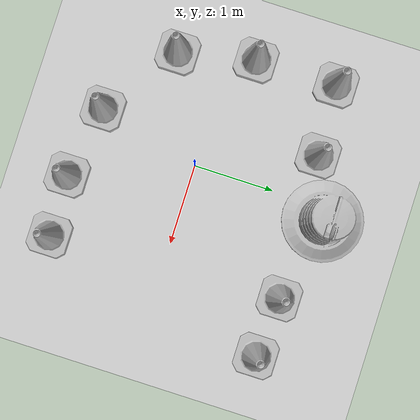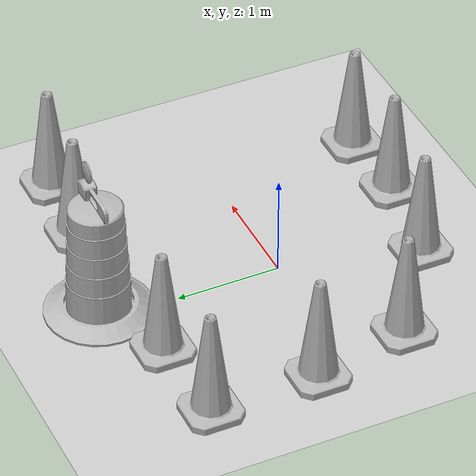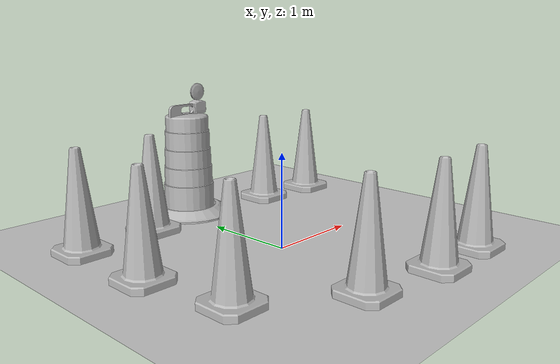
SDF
<sdf version="1.7">
 <world name="default">
  <light name="sun" type="directional">
   <pose>0 0 10 0 -0 0</pose>
   <diffuse>0.8 0.8 0.8 1</diffuse>
   <specular>0.2 0.2 0.2 1</specular>
   <attenuation>
    <range>1000</range>
    <constant>0.9</constant>
    <linear>0.01</linear>
    <quadratic>0.001</quadratic>
   </attenuation>
   <direction>-0.5 0.1 -0.9</direction>
   <spot><inner_angle>0</inner_angle><outer_angle>0</outer_angle><falloff>0</falloff></spot>
  </light>
  <model name="ground_plane">
   <static>1</static>
   <link name="link">
    <collision name="collision">
     <geometry><plane><normal>0 0 1</normal><size>100 100</size></plane></geometry>
     <surface>
      <contact><collide_bitmask>65535</collide_bitmask></contact>
      <friction><ode><mu>100</mu><mu2>50</mu2></ode></friction>
     </surface>
    </collision>
    <visual name="visual">
     <cast_shadows>0</cast_shadows>
     <geometry><plane><normal>0 0 1</normal><size>100 100</size></plane></geometry>
     <material>
      <script><uri>file://media/materials/scripts/gazebo.material</uri><name>Gazebo/Grey</name></script>
     </material>
    </visual>
   </link>
  </model>
  <gravity>0 0 -9.8</gravity>
  <magnetic_field>6e-06 2.3e-05 -4.2e-05</magnetic_field>
  <atmosphere type="adiabatic"/>
  <physics type="ode">
   <max_step_size>0.001</max_step_size>
   <real_time_factor>1</real_time_factor>
   <real_time_update_rate>1000</real_time_update_rate>
  </physics>
  <scene><ambient>0.4 0.4 0.4 1</ambient><background>0.7 0.7 0.7 1</background><shadows>1</shadows></scene>
  <audio><device>default</device></audio>
  <spherical_coordinates>
   <surface_model>EARTH_WGS84</surface_model>
   <latitude_deg>0</latitude_deg>
   <longitude_deg>0</longitude_deg>
   <elevation>0</elevation>
   <heading_deg>0</heading_deg>
  </spherical_coordinates>
  <model name="Construction Cone">
   <link name="link">
    <collision name="collision">
     <geometry>
      <mesh><scale>10 10 10</scale><uri>model://construction_cone/meshes/construction_cone.dae</uri></mesh>
     </geometry>
    </collision>
    <visual name="visual">
     <geometry>
      <mesh><scale>10 10 10</scale><uri>model://construction_cone/meshes/construction_cone.dae</uri></mesh>
     </geometry>
    </visual>
    <inertial>
     <inertia><ixx>1</ixx><ixy>0</ixy><ixz>0</ixz><iyy>1</iyy><iyz>0</iyz><izz>1</izz></inertia>
     <mass>1</mass>
    </inertial>
   </link>
   <pose>-1.47695 0.319613 -0 0 -0 0</pose>
  </model>
  <model name="Construction Cone_0">
   <link name="link">
    <collision name="collision">
     <geometry>
      <mesh><scale>10 10 10</scale><uri>model://construction_cone/meshes/construction_cone.dae</uri></mesh>
     </geometry>
    </collision>
    <visual name="visual">
     <geometry>
      <mesh><scale>10 10 10</scale><uri>model://construction_cone/meshes/construction_cone.dae</uri></mesh>
     </geometry>
    </visual>
    <inertial>
     <inertia><ixx>1</ixx><ixy>0</ixy><ixz>0</ixz><iyy>1</iyy><iyz>0</iyz><izz>1</izz></inertia>
     <mass>1</mass>
    </inertial>
   </link>
   <pose>-1.27558 -0.63174 -0 0 -1e-06 0</pose>
  </model>
  <model name="Construction Cone_1">
   <link name="link">
    <collision name="collision">
     <geometry>
      <mesh><scale>10 10 10</scale><uri>model://construction_cone/meshes/construction_cone.dae</uri></mesh>
     </geometry>
    </collision>
    <visual name="visual">
     <geometry>
      <mesh><scale>10 10 10</scale><uri>model://construction_cone/meshes/construction_cone.dae</uri></mesh>
     </geometry>
    </visual>
    <inertial>
     <inertia><ixx>1</ixx><ixy>0</ixy><ixz>0</ixz><iyy>1</iyy><iyz>0</iyz><izz>1</izz></inertia>
     <mass>1</mass>
    </inertial>
   </link>
   <pose>-1.48171 1.35547 -1e-05 0 -0 0</pose>
  </model>
  <model name="Construction Cone_2">
   <link name="link">
    <collision name="collision">
     <geometry>
      <mesh><scale>10 10 10</scale><uri>model://construction_cone/meshes/construction_cone.dae</uri></mesh>
     </geometry>
    </collision>
    <visual name="visual">
     <geometry>
      <mesh><scale>10 10 10</scale><uri>model://construction_cone/meshes/construction_cone.dae</uri></mesh>
     </geometry>
    </visual>
    <inertial>
     <inertia><ixx>1</ixx><ixy>0</ixy><ixz>0</ixz><iyy>1</iyy><iyz>0</iyz><izz>1</izz></inertia>
     <mass>1</mass>
    </inertial>
   </link>
   <pose>-0.581916 1.4069 -0 -0 -1e-06 0.001369</pose>
  </model>
  <model name="Construction Barrel">
   <link name="link">
    <inertial>
     <pose>0 0 0.4 0 -0 0</pose>
     <mass>500</mass>
     <inertia><ixx>51.2096</ixx><iyy>51.2096</iyy><izz>25</izz><ixy>0</ixy><ixz>0</ixz><iyz>0</iyz></inertia>
    </inertial>
    <collision name="collision">
     <geometry><mesh><uri>model://construction_barrel/meshes/construction_barrel.dae</uri></mesh></geometry>
    </collision>
    <visual name="visual">
     <geometry><mesh><uri>model://construction_barrel/meshes/construction_barrel.dae</uri></mesh></geometry>
    </visual>
   </link>
   <pose>0.168948 1.70199 -1e-06 5e-06 -2e-06 -1.3e-05</pose>
  </model>
  <model name="Construction Cone_3">
   <link name="link">
    <collision name="collision">
     <geometry>
      <mesh><scale>10 10 10</scale><uri>model://construction_cone/meshes/construction_cone.dae</uri></mesh>
     </geometry>
    </collision>
    <visual name="visual">
     <geometry>
      <mesh><scale>10 10 10</scale><uri>model://construction_cone/meshes/construction_cone.dae</uri></mesh>
     </geometry>
    </visual>
    <inertial>
     <inertia><ixx>1</ixx><ixy>0</ixy><ixz>0</ixz><iyy>1</iyy><iyz>0</iyz><izz>1</izz></inertia>
     <mass>1</mass>
    </inertial>
   </link>
   <pose>1.23426 1.47994 -8e-06 6e-06 -0 0</pose>
  </model>
  <model name="Construction Cone_4">
   <link name="link">
    <collision name="collision">
     <geometry>
      <mesh><scale>10 10 10</scale><uri>model://construction_cone/meshes/construction_cone.dae</uri></mesh>
     </geometry>
    </collision>
    <visual name="visual">
     <geometry>
      <mesh><scale>10 10 10</scale><uri>model://construction_cone/meshes/construction_cone.dae</uri></mesh>
     </geometry>
    </visual>
    <inertial>
     <inertia><ixx>1</ixx><ixy>0</ixy><ixz>0</ixz><iyy>1</iyy><iyz>0</iyz><izz>1</izz></inertia>
     <mass>1</mass>
    </inertial>
   </link>
   <pose>-0.330024 -1.29512 -0 -0 -0 -0</pose>
  </model>
  <model name="Construction Cone_5">
   <link name="link">
    <collision name="collision">
     <geometry>
      <mesh><scale>10 10 10</scale><uri>model://construction_cone/meshes/construction_cone.dae</uri></mesh>
     </geometry>
    </collision>
    <visual name="visual">
     <geometry>
      <mesh><scale>10 10 10</scale><uri>model://construction_cone/meshes/construction_cone.dae</uri></mesh>
     </geometry>
    </visual>
    <inertial>
     <inertia><ixx>1</ixx><ixy>0</ixy><ixz>0</ixz><iyy>1</iyy><iyz>0</iyz><izz>1</izz></inertia>
     <mass>1</mass>
    </inertial>
   </link>
   <pose>0.585382 -1.46416 -8e-06 1e-06 -0 0</pose>
  </model>
  <model name="Construction Cone_6">
   <link name="link">
    <collision name="collision">
     <geometry>
      <mesh><scale>10 10 10</scale><uri>model://construction_cone/meshes/construction_cone.dae</uri></mesh>
     </geometry>
    </collision>
    <visual name="visual">
     <geometry>
      <mesh><scale>10 10 10</scale><uri>model://construction_cone/meshes/construction_cone.dae</uri></mesh>
     </geometry>
    </visual>
    <inertial>
     <inertia><ixx>1</ixx><ixy>0</ixy><ixz>0</ixz><iyy>1</iyy><iyz>0</iyz><izz>1</izz></inertia>
     <mass>1</mass>
    </inertial>
   </link>
   <pose>1.35537 -1.44091 0 -1e-06 0 0</pose>
  </model>
  <model name="Construction Cone_7">
   <link name="link">
    <collision name="collision">
     <geometry>
      <mesh><scale>10 10 10</scale><uri>model://construction_cone/meshes/construction_cone.dae</uri></mesh>
     </geometry>
    </collision>
    <visual name="visual">
     <geometry>
      <mesh><scale>10 10 10</scale><uri>model://construction_cone/meshes/construction_cone.dae</uri></mesh>
     </geometry>
    </visual>
    <inertial>
     <inertia><ixx>1</ixx><ixy>0</ixy><ixz>0</ixz><iyy>1</iyy><iyz>0</iyz><izz>1</izz></inertia>
     <mass>1</mass>
    </inertial>
   </link>
   <pose>1.99089 1.41773 -0 0 -0 0</pose>
  </model>
 </world>
</sdf>
